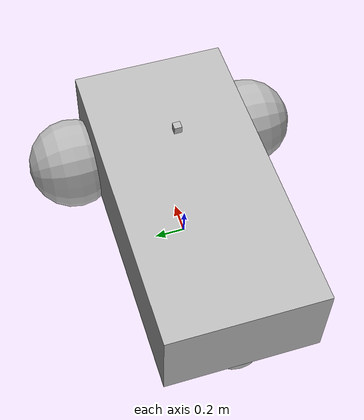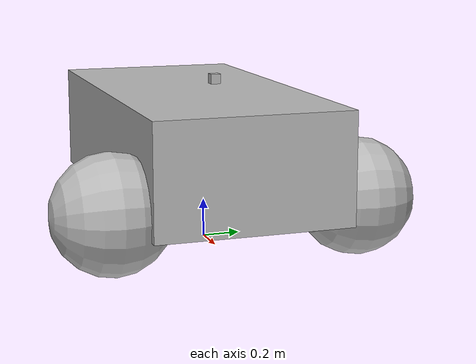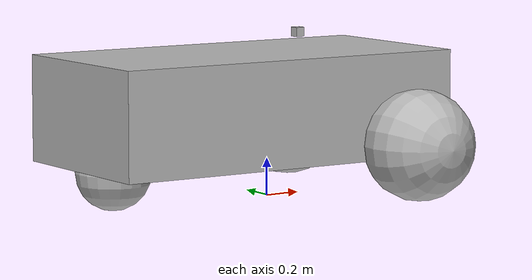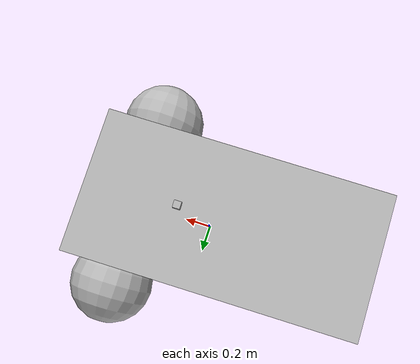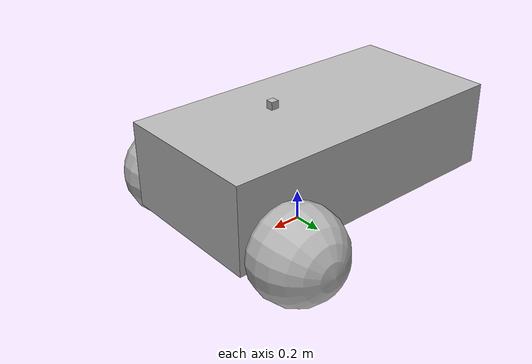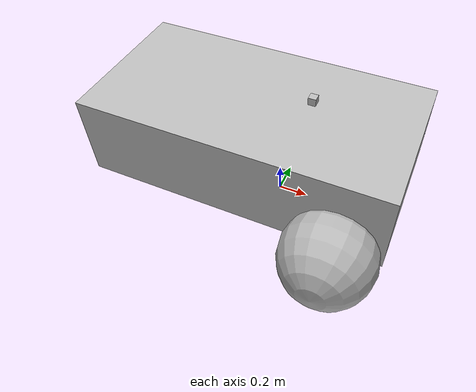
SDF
<?xml version='1.0'?>
<sdf version='1.6'>
	<model name='my_robot'>
      	<pose>0 0 0.325 0 -0 0</pose>

      	<link name='chassis'>
        	<pose>-0.151427 -0 0.175 0 -0 0</pose>
        	<inertial>
    	        <mass>1.14395</mass>
    	        <inertia>
    	        	<ixx>0.126164</ixx>
    	    	    <ixy>0</ixy>
    	    	    <ixz>0</ixz>
    	    	    <iyy>0.416519</iyy>
    	    	    <iyz>0</iyz>
    	    	    <izz>0.481014</izz>
            	</inertia>
     	   </inertial>
          <visual name='visual'>
          <geometry>
            <box>
              <size>2.01142 1 0.568726</size>
            </box>
          </geometry>
        </visual>
        <collision name='collision'>
          <geometry>
            <box>
              <size>2.01142 1 0.568726</size>
            </box>
          </geometry>
        </collision>
      </link>

      <link name='left_wheel'>
        <pose>0.554283 0.625029 -0.025 -1.5707 0 0</pose>
        <inertial>
          <mass>2</mass>
          <inertia>
            <ixx>0.145833</ixx>
            <ixy>0</ixy>
            <ixz>0</ixz>
            <iyy>0.145833</iyy>
            <iyz>0</iyz>
            <izz>0.125</izz>
          </inertia>
        </inertial>
        <visual name='visual'>
          <geometry>
            <sphere>
              <radius>0.3</radius>
            </sphere>
          </geometry>
        </visual>
        <collision name='collision'>
          <geometry>
            <sphere>
              <radius>0.3</radius>
            </sphere>
          </geometry>
          <surface>
            <friction>
              <ode>
                <mu>1</mu>
                <mu2>1</mu2>
                <slip1>0</slip1>
                <slip2>0</slip2>
              </ode>
            </friction>
            <contact>
              <ode>
                <soft_cfm>0</soft_cfm>
                <soft_erp>0.2</soft_erp>
                <kp>1e+13</kp>
                <kd>1</kd>
                <max_vel>0.01</max_vel>
                <min_depth>0.01</min_depth>
              </ode>
            </contact>
          </surface>
        </collision>
      </link>

      <link name='right_wheel'>
        <pose>0.554282 -0.625029 -0.025 -1.5707 0 0</pose>
        <inertial>
          <mass>2</mass>
          <inertia>
            <ixx>0.145833</ixx>
            <ixy>0</ixy>
            <ixz>0</ixz>
            <iyy>0.145833</iyy>
            <iyz>0</iyz>
            <izz>0.125</izz>
          </inertia>
        </inertial>
        <visual name='visual'>
          <geometry>
            <sphere>
              <radius>0.3</radius>
            </sphere>
          </geometry>
        </visual>
        <collision name='collision'>
          <geometry>
            <sphere>
              <radius>0.3</radius>
            </sphere>
          </geometry>
          <surface>
            <friction>
              <ode>
                <mu>1</mu>
                <mu2>1</mu2>
                <slip1>0</slip1>
                <slip2>0</slip2>
              </ode>
            </friction>
            <contact>
              <ode>
                <soft_cfm>0</soft_cfm>
                <soft_erp>0.2</soft_erp>
                <kp>1e+13</kp>
                <kd>1</kd>
                <max_vel>0.01</max_vel>
                <min_depth>0.01</min_depth>
              </ode>
            </contact>
          </surface>
        </collision>
      </link>

      <link name='caster'>
        <pose>-0.957138 -0 -0.125 0 -0 0</pose>
        <inertial>
          <mass>1</mass>
          <inertia>
            <ixx>0.1</ixx>
            <ixy>0</ixy>
            <ixz>0</ixz>
            <iyy>0.1</iyy>
            <iyz>0</iyz>
            <izz>0.1</izz>
          </inertia>
        </inertial>
        <visual name='visual'>
          <geometry>
            <sphere>
              <radius>0.2</radius>
            </sphere>
          </geometry>
        </visual>
        <collision name='collision'>
          <geometry>
            <sphere>
              <radius>0.2</radius>
            </sphere>
          </geometry>
        </collision>
      </link>

      <joint name='left_wheel_joint' type='revolute'>
        <parent>chassis</parent>
        <child>left_wheel</child>
        <axis>
          <xyz>0 0 1</xyz>
          <limit>
            <lower>-1.79769e+308</lower>
            <upper>1.79769e+308</upper>
          </limit>
        </axis>
      </joint>

      <joint name='right_wheel_joint' type='revolute'>
        <parent>chassis</parent>
        <child>right_wheel</child>
        <axis>
          <xyz>0 0 1</xyz>
          <limit>
            <lower>-1.79769e+308</lower>
            <upper>1.79769e+308</upper>
          </limit>
        </axis>
      </joint>

      <joint name='caster_wheel' type='ball'>
        <parent>chassis</parent>
        <child>caster</child>
      </joint>

      <link name="ray_link">
      <pose>0.2 0 0.55 0 0 0</pose>
        <visual name="visual_box">
          <geometry>
            <box>
              <size>0.05 0.05 0.05</size>
            </box>
          </geometry>
        </visual>
        <collision name="collision_box">
          <geometry>
            <box>
              <size>0.05 0.05 0.05</size>
            </box>
          </geometry>
          <laser_retro>100.0</laser_retro>
        </collision>

   	</link>

      <joint name="ray_joint" type="fixed">
	<child>ray_link</child>
	<parent>chassis</parent>
      </joint>

    </model>
</sdf>
